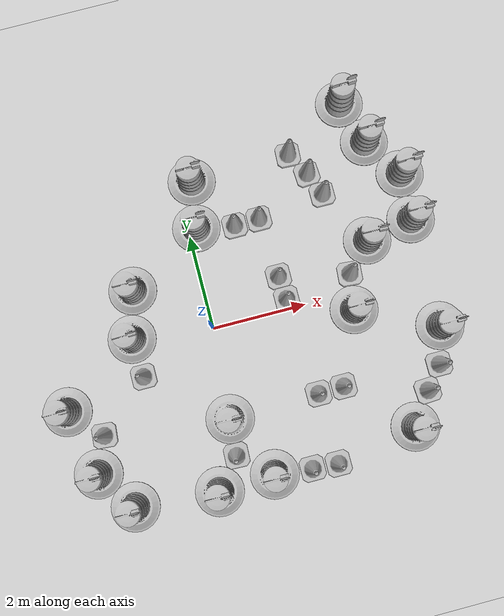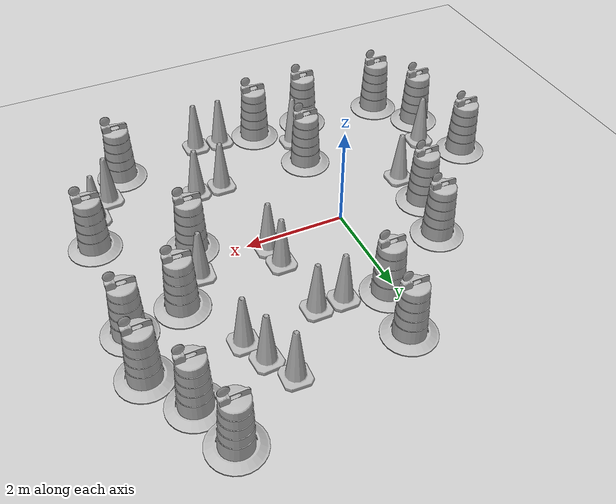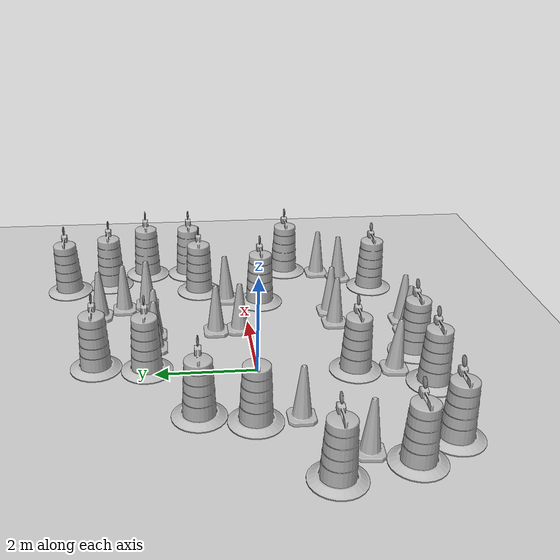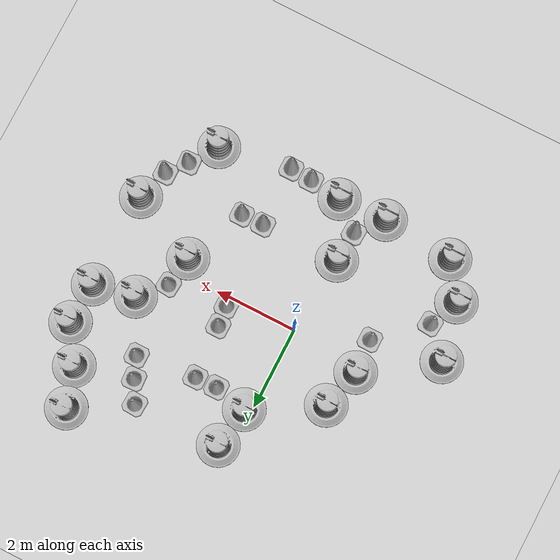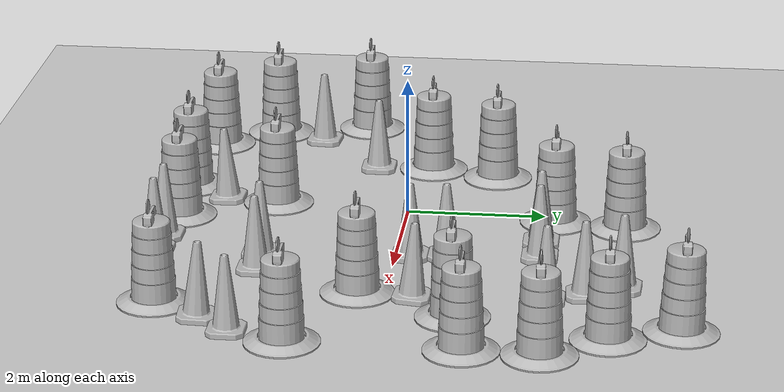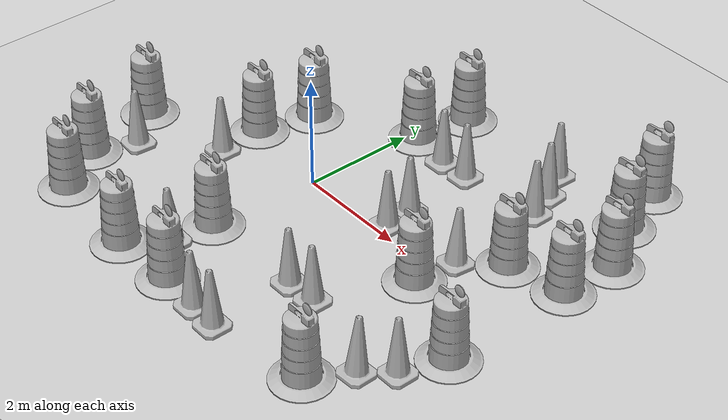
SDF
<sdf version="1.7">
 <world name="default">
  <light name="sun" type="directional">
   <pose>0 0 10 0 -0 0</pose>
   <diffuse>0.8 0.8 0.8 1</diffuse>
   <specular>0.2 0.2 0.2 1</specular>
   <attenuation>
    <range>1000</range>
    <constant>0.9</constant>
    <linear>0.01</linear>
    <quadratic>0.001</quadratic>
   </attenuation>
   <direction>-0.5 0.1 -0.9</direction>
   <spot><inner_angle>0</inner_angle><outer_angle>0</outer_angle><falloff>0</falloff></spot>
  </light>
  <model name="ground_plane">
   <static>1</static>
   <link name="link">
    <collision name="collision">
     <geometry><plane><normal>0 0 1</normal><size>100 100</size></plane></geometry>
     <surface>
      <contact><collide_bitmask>65535</collide_bitmask></contact>
      <friction><ode><mu>100</mu><mu2>50</mu2></ode></friction>
     </surface>
    </collision>
    <visual name="visual">
     <cast_shadows>0</cast_shadows>
     <geometry><plane><normal>0 0 1</normal><size>100 100</size></plane></geometry>
     <material>
      <script><uri>file://media/materials/scripts/gazebo.material</uri><name>Gazebo/Grey</name></script>
     </material>
    </visual>
   </link>
  </model>
  <gravity>0 0 -9.8</gravity>
  <magnetic_field>6e-06 2.3e-05 -4.2e-05</magnetic_field>
  <atmosphere type="adiabatic"/>
  <physics type="ode">
   <max_step_size>0.001</max_step_size>
   <real_time_factor>1</real_time_factor>
   <real_time_update_rate>1000</real_time_update_rate>
  </physics>
  <scene><ambient>0.4 0.4 0.4 1</ambient><background>0.7 0.7 0.7 1</background><shadows>1</shadows></scene>
  <audio><device>default</device></audio>
  <spherical_coordinates>
   <surface_model>EARTH_WGS84</surface_model>
   <latitude_deg>0</latitude_deg>
   <longitude_deg>0</longitude_deg>
   <elevation>0</elevation>
   <heading_deg>0</heading_deg>
  </spherical_coordinates>
  <model name="Construction Cone">
   <link name="link">
    <collision name="collision">
     <geometry>
      <mesh><scale>10 10 10</scale><uri>model://construction_cone/meshes/construction_cone.dae</uri></mesh>
     </geometry>
    </collision>
    <visual name="visual">
     <geometry>
      <mesh><scale>10 10 10</scale><uri>model://construction_cone/meshes/construction_cone.dae</uri></mesh>
     </geometry>
    </visual>
    <inertial>
     <inertia><ixx>1</ixx><ixy>0</ixy><ixz>0</ixz><iyy>1</iyy><iyz>0</iyz><izz>1</izz></inertia>
     <mass>1</mass>
    </inertial>
   </link>
   <pose>1.77296 -1.87258 -7e-06 6e-06 -0 0</pose>
  </model>
  <model name="Construction Barrel">
   <link name="link">
    <inertial>
     <pose>0 0 0.4 0 -0 0</pose>
     <mass>500</mass>
     <inertia><ixx>51.2096</ixx><iyy>51.2096</iyy><izz>25</izz><ixy>0</ixy><ixz>0</ixz><iyz>0</iyz></inertia>
    </inertial>
    <collision name="collision">
     <geometry><mesh><uri>model://construction_barrel/meshes/construction_barrel.dae</uri></mesh></geometry>
    </collision>
    <visual name="visual">
     <geometry><mesh><uri>model://construction_barrel/meshes/construction_barrel.dae</uri></mesh></geometry>
    </visual>
   </link>
   <pose>2.95349 -0.370543 0 0 -0 0.006303</pose>
  </model>
  <model name="Construction Cone_0">
   <link name="link">
    <collision name="collision">
     <geometry>
      <mesh><scale>10 10 10</scale><uri>model://construction_cone/meshes/construction_cone.dae</uri></mesh>
     </geometry>
    </collision>
    <visual name="visual">
     <geometry>
      <mesh><scale>10 10 10</scale><uri>model://construction_cone/meshes/construction_cone.dae</uri></mesh>
     </geometry>
    </visual>
    <inertial>
     <inertia><ixx>1</ixx><ixy>0</ixy><ixz>0</ixz><iyy>1</iyy><iyz>0</iyz><izz>1</izz></inertia>
     <mass>1</mass>
    </inertial>
   </link>
   <pose>2.31959 -1.85872 -0 0 -1e-06 0</pose>
  </model>
  <model name="Construction Barrel_0">
   <link name="link">
    <inertial>
     <pose>0 0 0.4 0 -0 0</pose>
     <mass>500</mass>
     <inertia><ixx>51.2096</ixx><iyy>51.2096</iyy><izz>25</izz><ixy>0</ixy><ixz>0</ixz><iyz>0</iyz></inertia>
    </inertial>
    <collision name="collision">
     <geometry><mesh><uri>model://construction_barrel/meshes/construction_barrel.dae</uri></mesh></geometry>
    </collision>
    <visual name="visual">
     <geometry><mesh><uri>model://construction_barrel/meshes/construction_barrel.dae</uri></mesh></geometry>
    </visual>
   </link>
   <pose>-1.7053 0.211753 -2e-06 2e-06 7e-06 0.022346</pose>
  </model>
  <model name="Construction Cone_1">
   <link name="link">
    <collision name="collision">
     <geometry>
      <mesh><scale>10 10 10</scale><uri>model://construction_cone/meshes/construction_cone.dae</uri></mesh>
     </geometry>
    </collision>
    <visual name="visual">
     <geometry>
      <mesh><scale>10 10 10</scale><uri>model://construction_cone/meshes/construction_cone.dae</uri></mesh>
     </geometry>
    </visual>
    <inertial>
     <inertia><ixx>1</ixx><ixy>0</ixy><ixz>0</ixz><iyy>1</iyy><iyz>0</iyz><izz>1</izz></inertia>
     <mass>1</mass>
    </inertial>
   </link>
   <pose>-1.65446 -0.610089 -1e-05 0 -0 0</pose>
  </model>
  <model name="Construction Barrel_1">
   <link name="link">
    <inertial>
     <pose>0 0 0.4 0 -0 0</pose>
     <mass>500</mass>
     <inertia><ixx>51.2096</ixx><iyy>51.2096</iyy><izz>25</izz><ixy>0</ixy><ixz>0</ixz><iyz>0</iyz></inertia>
    </inertial>
    <collision name="collision">
     <geometry><mesh><uri>model://construction_barrel/meshes/construction_barrel.dae</uri></mesh></geometry>
    </collision>
    <visual name="visual">
     <geometry><mesh><uri>model://construction_barrel/meshes/construction_barrel.dae</uri></mesh></geometry>
    </visual>
   </link>
   <pose>-1.44759 1.19818 -0 0 0 -0.018238</pose>
  </model>
  <model name="Construction Cone_2">
   <link name="link">
    <collision name="collision">
     <geometry>
      <mesh><scale>10 10 10</scale><uri>model://construction_cone/meshes/construction_cone.dae</uri></mesh>
     </geometry>
    </collision>
    <visual name="visual">
     <geometry>
      <mesh><scale>10 10 10</scale><uri>model://construction_cone/meshes/construction_cone.dae</uri></mesh>
     </geometry>
    </visual>
    <inertial>
     <inertia><ixx>1</ixx><ixy>0</ixy><ixz>0</ixz><iyy>1</iyy><iyz>0</iyz><izz>1</izz></inertia>
     <mass>1</mass>
    </inertial>
   </link>
   <pose>3.06233 0.381424 0.01029 -0.040935 8.3e-05 -0.082133</pose>
  </model>
  <model name="Construction Cone_3">
   <link name="link">
    <collision name="collision">
     <geometry>
      <mesh><scale>10 10 10</scale><uri>model://construction_cone/meshes/construction_cone.dae</uri></mesh>
     </geometry>
    </collision>
    <visual name="visual">
     <geometry>
      <mesh><scale>10 10 10</scale><uri>model://construction_cone/meshes/construction_cone.dae</uri></mesh>
     </geometry>
    </visual>
    <inertial>
     <inertia><ixx>1</ixx><ixy>0</ixy><ixz>0</ixz><iyy>1</iyy><iyz>0</iyz><izz>1</izz></inertia>
     <mass>1</mass>
    </inertial>
   </link>
   <pose>-0.192156 -2.66579 0.010792 0.042465 -0.000102 -0.033848</pose>
  </model>
  <model name="Construction Barrel_2">
   <link name="link">
    <inertial>
     <pose>0 0 0.4 0 -0 0</pose>
     <mass>500</mass>
     <inertia><ixx>51.2096</ixx><iyy>51.2096</iyy><izz>25</izz><ixy>0</ixy><ixz>0</ixz><iyz>0</iyz></inertia>
    </inertial>
    <collision name="collision">
     <geometry><mesh><uri>model://construction_barrel/meshes/construction_barrel.dae</uri></mesh></geometry>
    </collision>
    <visual name="visual">
     <geometry><mesh><uri>model://construction_barrel/meshes/construction_barrel.dae</uri></mesh></geometry>
    </visual>
   </link>
   <pose>0.470434 -3.23657 0 0 0 -3.9e-05</pose>
  </model>
  <model name="Construction Cone_4">
   <link name="link">
    <collision name="collision">
     <geometry>
      <mesh><scale>10 10 10</scale><uri>model://construction_cone/meshes/construction_cone.dae</uri></mesh>
     </geometry>
    </collision>
    <visual name="visual">
     <geometry>
      <mesh><scale>10 10 10</scale><uri>model://construction_cone/meshes/construction_cone.dae</uri></mesh>
     </geometry>
    </visual>
    <inertial>
     <inertia><ixx>1</ixx><ixy>0</ixy><ixz>0</ixz><iyy>1</iyy><iyz>0</iyz><izz>1</izz></inertia>
     <mass>1</mass>
    </inertial>
   </link>
   <pose>1.25533 -3.32118 -0 -0 -0 -0</pose>
  </model>
  <model name="Construction Cone_5">
   <link name="link">
    <collision name="collision">
     <geometry>
      <mesh><scale>10 10 10</scale><uri>model://construction_cone/meshes/construction_cone.dae</uri></mesh>
     </geometry>
    </collision>
    <visual name="visual">
     <geometry>
      <mesh><scale>10 10 10</scale><uri>model://construction_cone/meshes/construction_cone.dae</uri></mesh>
     </geometry>
    </visual>
    <inertial>
     <inertia><ixx>1</ixx><ixy>0</ixy><ixz>0</ixz><iyy>1</iyy><iyz>0</iyz><izz>1</izz></inertia>
     <mass>1</mass>
    </inertial>
   </link>
   <pose>1.79684 -3.35818 -0 0 -0 0</pose>
  </model>
  <model name="Construction Barrel_3">
   <link name="link">
    <inertial>
     <pose>0 0 0.4 0 -0 0</pose>
     <mass>500</mass>
     <inertia><ixx>51.2096</ixx><iyy>51.2096</iyy><izz>25</izz><ixy>0</ixy><ixz>0</ixz><iyz>0</iyz></inertia>
    </inertial>
    <collision name="collision">
     <geometry><mesh><uri>model://construction_barrel/meshes/construction_barrel.dae</uri></mesh></geometry>
    </collision>
    <visual name="visual">
     <geometry><mesh><uri>model://construction_barrel/meshes/construction_barrel.dae</uri></mesh></geometry>
    </visual>
   </link>
   <pose>0.329007 3.15014 0 0 1e-06 0.008472</pose>
  </model>
  <model name="Construction Barrel_4">
   <link name="link">
    <inertial>
     <pose>0 0 0.4 0 -0 0</pose>
     <mass>500</mass>
     <inertia><ixx>51.2096</ixx><iyy>51.2096</iyy><izz>25</izz><ixy>0</ixy><ixz>0</ixz><iyz>0</iyz></inertia>
    </inertial>
    <collision name="collision">
     <geometry><mesh><uri>model://construction_barrel/meshes/construction_barrel.dae</uri></mesh></geometry>
    </collision>
    <visual name="visual">
     <geometry><mesh><uri>model://construction_barrel/meshes/construction_barrel.dae</uri></mesh></geometry>
    </visual>
   </link>
   <pose>0.177042 2.14934 0 0 -0 0.004335</pose>
  </model>
  <model name="Construction Cone_6">
   <link name="link">
    <collision name="collision">
     <geometry>
      <mesh><scale>10 10 10</scale><uri>model://construction_cone/meshes/construction_cone.dae</uri></mesh>
     </geometry>
    </collision>
    <visual name="visual">
     <geometry>
      <mesh><scale>10 10 10</scale><uri>model://construction_cone/meshes/construction_cone.dae</uri></mesh>
     </geometry>
    </visual>
    <inertial>
     <inertia><ixx>1</ixx><ixy>0</ixy><ixz>0</ixz><iyy>1</iyy><iyz>0</iyz><izz>1</izz></inertia>
     <mass>1</mass>
    </inertial>
   </link>
   <pose>0.977276 1.99288 -0 -0 -0 -0</pose>
  </model>
  <model name="Construction Cone_7">
   <link name="link">
    <collision name="collision">
     <geometry>
      <mesh><scale>10 10 10</scale><uri>model://construction_cone/meshes/construction_cone.dae</uri></mesh>
     </geometry>
    </collision>
    <visual name="visual">
     <geometry>
      <mesh><scale>10 10 10</scale><uri>model://construction_cone/meshes/construction_cone.dae</uri></mesh>
     </geometry>
    </visual>
    <inertial>
     <inertia><ixx>1</ixx><ixy>0</ixy><ixz>0</ixz><iyy>1</iyy><iyz>0</iyz><izz>1</izz></inertia>
     <mass>1</mass>
    </inertial>
   </link>
   <pose>1.51366 2.00601 -0 0 -0 0</pose>
  </model>
  <model name="Construction Barrel_5">
   <link name="link">
    <inertial>
     <pose>0 0 0.4 0 -0 0</pose>
     <mass>500</mass>
     <inertia><ixx>51.2096</ixx><iyy>51.2096</iyy><izz>25</izz><ixy>0</ixy><ixz>0</ixz><iyz>0</iyz></inertia>
    </inertial>
    <collision name="collision">
     <geometry><mesh><uri>model://construction_barrel/meshes/construction_barrel.dae</uri></mesh></geometry>
    </collision>
    <visual name="visual">
     <geometry><mesh><uri>model://construction_barrel/meshes/construction_barrel.dae</uri></mesh></geometry>
    </visual>
   </link>
   <pose>3.53373 -3.03836 -1.8e-05 2.6e-05 -1.5e-05 0.000833</pose>
  </model>
  <model name="Construction Cone_8">
   <link name="link">
    <collision name="collision">
     <geometry>
      <mesh><scale>10 10 10</scale><uri>model://construction_cone/meshes/construction_cone.dae</uri></mesh>
     </geometry>
    </collision>
    <visual name="visual">
     <geometry>
      <mesh><scale>10 10 10</scale><uri>model://construction_cone/meshes/construction_cone.dae</uri></mesh>
     </geometry>
    </visual>
    <inertial>
     <inertia><ixx>1</ixx><ixy>0</ixy><ixz>0</ixz><iyy>1</iyy><iyz>0</iyz><izz>1</izz></inertia>
     <mass>1</mass>
    </inertial>
   </link>
   <pose>3.98091 -2.38621 0.012829 -0.043805 0.010582 0.054095</pose>
  </model>
  <model name="Construction Cone_9">
   <link name="link">
    <collision name="collision">
     <geometry>
      <mesh><scale>10 10 10</scale><uri>model://construction_cone/meshes/construction_cone.dae</uri></mesh>
     </geometry>
    </collision>
    <visual name="visual">
     <geometry>
      <mesh><scale>10 10 10</scale><uri>model://construction_cone/meshes/construction_cone.dae</uri></mesh>
     </geometry>
    </visual>
    <inertial>
     <inertia><ixx>1</ixx><ixy>0</ixy><ixz>0</ixz><iyy>1</iyy><iyz>0</iyz><izz>1</izz></inertia>
     <mass>1</mass>
    </inertial>
   </link>
   <pose>4.36049 -1.91907 -1e-05 0 -0 0.00059</pose>
  </model>
  <model name="Construction Barrel_6">
   <link name="link">
    <inertial>
     <pose>0 0 0.4 0 -0 0</pose>
     <mass>500</mass>
     <inertia><ixx>51.2096</ixx><iyy>51.2096</iyy><izz>25</izz><ixy>0</ixy><ixz>0</ixz><iyz>0</iyz></inertia>
    </inertial>
    <collision name="collision">
     <geometry><mesh><uri>model://construction_barrel/meshes/construction_barrel.dae</uri></mesh></geometry>
    </collision>
    <visual name="visual">
     <geometry><mesh><uri>model://construction_barrel/meshes/construction_barrel.dae</uri></mesh></geometry>
    </visual>
   </link>
   <pose>4.60473 -1.14993 0 0 0 -2.7e-05</pose>
  </model>
  <model name="Construction Barrel_7">
   <link name="link">
    <inertial>
     <pose>0 0 0.4 0 -0 0</pose>
     <mass>500</mass>
     <inertia><ixx>51.2096</ixx><iyy>51.2096</iyy><izz>25</izz><ixy>0</ixy><ixz>0</ixz><iyz>0</iyz></inertia>
    </inertial>
    <collision name="collision">
     <geometry><mesh><uri>model://construction_barrel/meshes/construction_barrel.dae</uri></mesh></geometry>
    </collision>
    <visual name="visual">
     <geometry><mesh><uri>model://construction_barrel/meshes/construction_barrel.dae</uri></mesh></geometry>
    </visual>
   </link>
   <pose>4.62786 1.18179 -1e-06 3e-06 -2e-06 -0.004581</pose>
  </model>
  <model name="Construction Barrel_8">
   <link name="link">
    <inertial>
     <pose>0 0 0.4 0 -0 0</pose>
     <mass>500</mass>
     <inertia><ixx>51.2096</ixx><iyy>51.2096</iyy><izz>25</izz><ixy>0</ixy><ixz>0</ixz><iyz>0</iyz></inertia>
    </inertial>
    <collision name="collision">
     <geometry><mesh><uri>model://construction_barrel/meshes/construction_barrel.dae</uri></mesh></geometry>
    </collision>
    <visual name="visual">
     <geometry><mesh><uri>model://construction_barrel/meshes/construction_barrel.dae</uri></mesh></geometry>
    </visual>
   </link>
   <pose>3.61269 0.978657 0 2e-06 1e-06 -0.012491</pose>
  </model>
  <model name="Construction Barrel_9">
   <link name="link">
    <inertial>
     <pose>0 0 0.4 0 -0 0</pose>
     <mass>500</mass>
     <inertia><ixx>51.2096</ixx><iyy>51.2096</iyy><izz>25</izz><ixy>0</ixy><ixz>0</ixz><iyz>0</iyz></inertia>
    </inertial>
    <collision name="collision">
     <geometry><mesh><uri>model://construction_barrel/meshes/construction_barrel.dae</uri></mesh></geometry>
    </collision>
    <visual name="visual">
     <geometry><mesh><uri>model://construction_barrel/meshes/construction_barrel.dae</uri></mesh></geometry>
    </visual>
   </link>
   <pose>4.6718 2.19638 -0 0 -0 0.048691</pose>
  </model>
  <model name="Construction Barrel_10">
   <link name="link">
    <inertial>
     <pose>0 0 0.4 0 -0 0</pose>
     <mass>500</mass>
     <inertia><ixx>51.2096</ixx><iyy>51.2096</iyy><izz>25</izz><ixy>0</ixy><ixz>0</ixz><iyz>0</iyz></inertia>
    </inertial>
    <collision name="collision">
     <geometry><mesh><uri>model://construction_barrel/meshes/construction_barrel.dae</uri></mesh></geometry>
    </collision>
    <visual name="visual">
     <geometry><mesh><uri>model://construction_barrel/meshes/construction_barrel.dae</uri></mesh></geometry>
    </visual>
   </link>
   <pose>4.11752 3.05038 0 0 -0 0.018745</pose>
  </model>
  <model name="Construction Cone_10">
   <link name="link">
    <collision name="collision">
     <geometry>
      <mesh><scale>10 10 10</scale><uri>model://construction_cone/meshes/construction_cone.dae</uri></mesh>
     </geometry>
    </collision>
    <visual name="visual">
     <geometry>
      <mesh><scale>10 10 10</scale><uri>model://construction_cone/meshes/construction_cone.dae</uri></mesh>
     </geometry>
    </visual>
    <inertial>
     <inertia><ixx>1</ixx><ixy>0</ixy><ixz>0</ixz><iyy>1</iyy><iyz>0</iyz><izz>1</izz></inertia>
     <mass>1</mass>
    </inertial>
   </link>
   <pose>2.9508 2.18126 -0 0 0 -0.001445</pose>
  </model>
  <model name="Construction Cone_11">
   <link name="link">
    <collision name="collision">
     <geometry>
      <mesh><scale>10 10 10</scale><uri>model://construction_cone/meshes/construction_cone.dae</uri></mesh>
     </geometry>
    </collision>
    <visual name="visual">
     <geometry>
      <mesh><scale>10 10 10</scale><uri>model://construction_cone/meshes/construction_cone.dae</uri></mesh>
     </geometry>
    </visual>
    <inertial>
     <inertia><ixx>1</ixx><ixy>0</ixy><ixz>0</ixz><iyy>1</iyy><iyz>0</iyz><izz>1</izz></inertia>
     <mass>1</mass>
    </inertial>
   </link>
   <pose>2.75001 2.68607 -0 0 -0 0.061424</pose>
  </model>
  <model name="Construction Cone_12">
   <link name="link">
    <collision name="collision">
     <geometry>
      <mesh><scale>10 10 10</scale><uri>model://construction_cone/meshes/construction_cone.dae</uri></mesh>
     </geometry>
    </collision>
    <visual name="visual">
     <geometry>
      <mesh><scale>10 10 10</scale><uri>model://construction_cone/meshes/construction_cone.dae</uri></mesh>
     </geometry>
    </visual>
    <inertial>
     <inertia><ixx>1</ixx><ixy>0</ixy><ixz>0</ixz><iyy>1</iyy><iyz>0</iyz><izz>1</izz></inertia>
     <mass>1</mass>
    </inertial>
   </link>
   <pose>2.46331 3.19081 -1e-05 -1e-06 -0 -0.047777</pose>
  </model>
  <model name="Construction Barrel_11">
   <link name="link">
    <inertial>
     <pose>0 0 0.4 0 -0 0</pose>
     <mass>500</mass>
     <inertia><ixx>51.2096</ixx><iyy>51.2096</iyy><izz>25</izz><ixy>0</ixy><ixz>0</ixz><iyz>0</iyz></inertia>
    </inertial>
    <collision name="collision">
     <geometry><mesh><uri>model://construction_barrel/meshes/construction_barrel.dae</uri></mesh></geometry>
    </collision>
    <visual name="visual">
     <geometry><mesh><uri>model://construction_barrel/meshes/construction_barrel.dae</uri></mesh></geometry>
    </visual>
   </link>
   <pose>3.81764 3.99342 0.014424 -0.026366 -0.010909 0.038039</pose>
  </model>
  <model name="Construction Cone_13">
   <link name="link">
    <collision name="collision">
     <geometry>
      <mesh><scale>10 10 10</scale><uri>model://construction_cone/meshes/construction_cone.dae</uri></mesh>
     </geometry>
    </collision>
    <visual name="visual">
     <geometry>
      <mesh><scale>10 10 10</scale><uri>model://construction_cone/meshes/construction_cone.dae</uri></mesh>
     </geometry>
    </visual>
    <inertial>
     <inertia><ixx>1</ixx><ixy>0</ixy><ixz>0</ixz><iyy>1</iyy><iyz>0</iyz><izz>1</izz></inertia>
     <mass>1</mass>
    </inertial>
   </link>
   <pose>1.59756 0.712961 0 -0 -0 -0.000473</pose>
  </model>
  <model name="Construction Cone_14">
   <link name="link">
    <collision name="collision">
     <geometry>
      <mesh><scale>10 10 10</scale><uri>model://construction_cone/meshes/construction_cone.dae</uri></mesh>
     </geometry>
    </collision>
    <visual name="visual">
     <geometry>
      <mesh><scale>10 10 10</scale><uri>model://construction_cone/meshes/construction_cone.dae</uri></mesh>
     </geometry>
    </visual>
    <inertial>
     <inertia><ixx>1</ixx><ixy>0</ixy><ixz>0</ixz><iyy>1</iyy><iyz>0</iyz><izz>1</izz></inertia>
     <mass>1</mass>
    </inertial>
   </link>
   <pose>1.64453 0.209985 -0 0 -1e-06 -0.000206</pose>
  </model>
  <model name="Construction Barrel_12">
   <link name="link">
    <inertial>
     <pose>0 0 0.4 0 -0 0</pose>
     <mass>500</mass>
     <inertia><ixx>51.2096</ixx><iyy>51.2096</iyy><izz>25</izz><ixy>0</ixy><ixz>0</ixz><iyz>0</iyz></inertia>
    </inertial>
    <collision name="collision">
     <geometry><mesh><uri>model://construction_barrel/meshes/construction_barrel.dae</uri></mesh></geometry>
    </collision>
    <visual name="visual">
     <geometry><mesh><uri>model://construction_barrel/meshes/construction_barrel.dae</uri></mesh></geometry>
    </visual>
   </link>
   <pose>-0.135727 -1.91026 -1e-05 0 -0 0.00275</pose>
  </model>
  <model name="Construction Barrel_13">
   <link name="link">
    <inertial>
     <pose>0 0 0.4 0 -0 0</pose>
     <mass>500</mass>
     <inertia><ixx>51.2096</ixx><iyy>51.2096</iyy><izz>25</izz><ixy>0</ixy><ixz>0</ixz><iyz>0</iyz></inertia>
    </inertial>
    <collision name="collision">
     <geometry><mesh><uri>model://construction_barrel/meshes/construction_barrel.dae</uri></mesh></geometry>
    </collision>
    <visual name="visual">
     <geometry><mesh><uri>model://construction_barrel/meshes/construction_barrel.dae</uri></mesh></geometry>
    </visual>
   </link>
   <pose>-0.711056 -3.2881 -1e-06 1.6e-05 -8e-06 -0.000611</pose>
  </model>
  <model name="Construction Barrel_14">
   <link name="link">
    <inertial>
     <pose>0 0 0.4 0 -0 0</pose>
     <mass>500</mass>
     <inertia><ixx>51.2096</ixx><iyy>51.2096</iyy><izz>25</izz><ixy>0</ixy><ixz>0</ixz><iyz>0</iyz></inertia>
    </inertial>
    <collision name="collision">
     <geometry><mesh><uri>model://construction_barrel/meshes/construction_barrel.dae</uri></mesh></geometry>
    </collision>
    <visual name="visual">
     <geometry><mesh><uri>model://construction_barrel/meshes/construction_barrel.dae</uri></mesh></geometry>
    </visual>
   </link>
   <pose>-2.45721 -3.147 -4e-06 -5e-06 -7e-06 -9e-06</pose>
  </model>
  <model name="Construction Barrel_15">
   <link name="link">
    <inertial>
     <pose>0 0 0.4 0 -0 0</pose>
     <mass>500</mass>
     <inertia><ixx>51.2096</ixx><iyy>51.2096</iyy><izz>25</izz><ixy>0</ixy><ixz>0</ixz><iyz>0</iyz></inertia>
    </inertial>
    <collision name="collision">
     <geometry><mesh><uri>model://construction_barrel/meshes/construction_barrel.dae</uri></mesh></geometry>
    </collision>
    <visual name="visual">
     <geometry><mesh><uri>model://construction_barrel/meshes/construction_barrel.dae</uri></mesh></geometry>
    </visual>
   </link>
   <pose>-3.03514 -2.31199 0 0 -0 0.00586</pose>
  </model>
  <model name="Construction Cone_15">
   <link name="link">
    <collision name="collision">
     <geometry>
      <mesh><scale>10 10 10</scale><uri>model://construction_cone/meshes/construction_cone.dae</uri></mesh>
     </geometry>
    </collision>
    <visual name="visual">
     <geometry>
      <mesh><scale>10 10 10</scale><uri>model://construction_cone/meshes/construction_cone.dae</uri></mesh>
     </geometry>
    </visual>
    <inertial>
     <inertia><ixx>1</ixx><ixy>0</ixy><ixz>0</ixz><iyy>1</iyy><iyz>0</iyz><izz>1</izz></inertia>
     <mass>1</mass>
    </inertial>
   </link>
   <pose>-2.72605 -1.57998 0 -0 -0 -0.080822</pose>
  </model>
  <model name="Construction Barrel_16">
   <link name="link">
    <inertial>
     <pose>0 0 0.4 0 -0 0</pose>
     <mass>500</mass>
     <inertia><ixx>51.2096</ixx><iyy>51.2096</iyy><izz>25</izz><ixy>0</ixy><ixz>0</ixz><iyz>0</iyz></inertia>
    </inertial>
    <collision name="collision">
     <geometry><mesh><uri>model://construction_barrel/meshes/construction_barrel.dae</uri></mesh></geometry>
    </collision>
    <visual name="visual">
     <geometry><mesh><uri>model://construction_barrel/meshes/construction_barrel.dae</uri></mesh></geometry>
    </visual>
   </link>
   <pose>-3.35484 -0.916222 0 1e-06 1e-06 -4e-06</pose>
  </model>
 </world>
</sdf>
